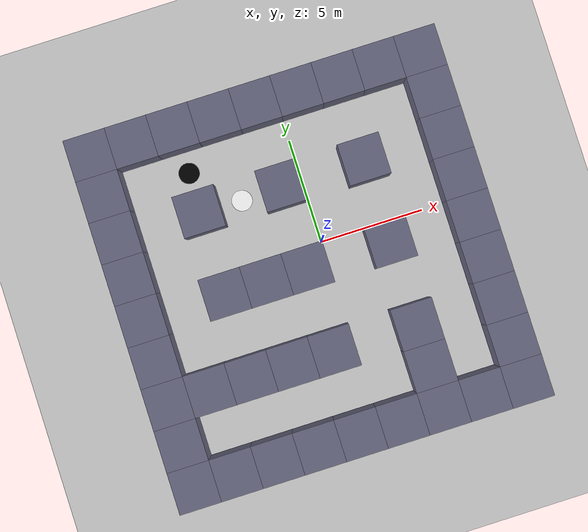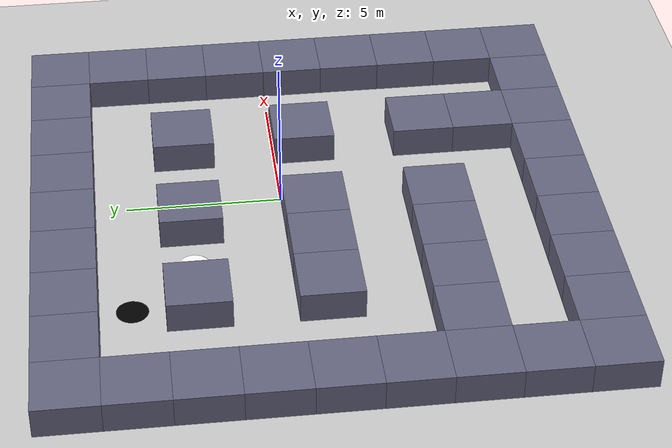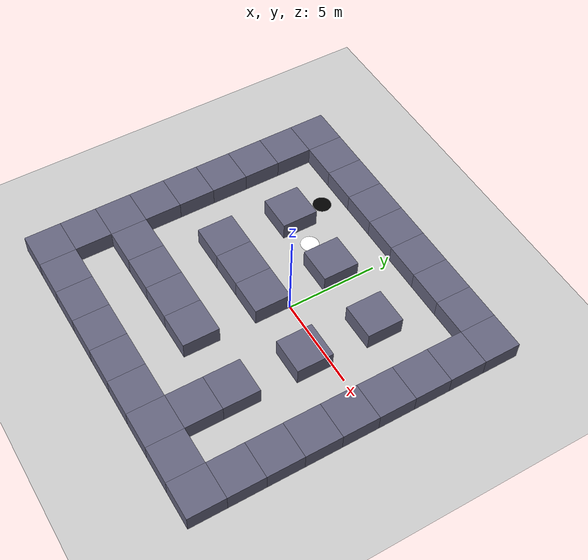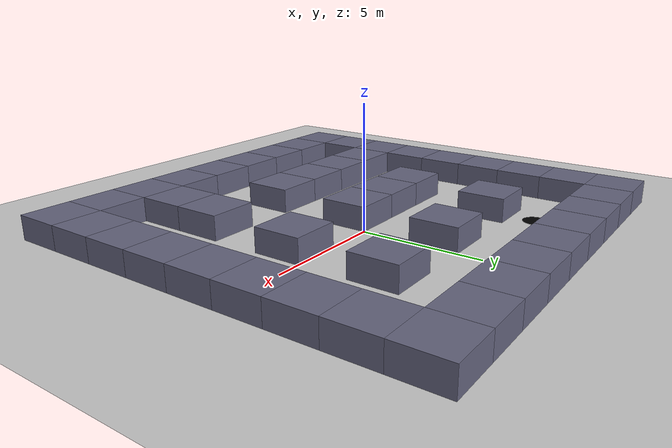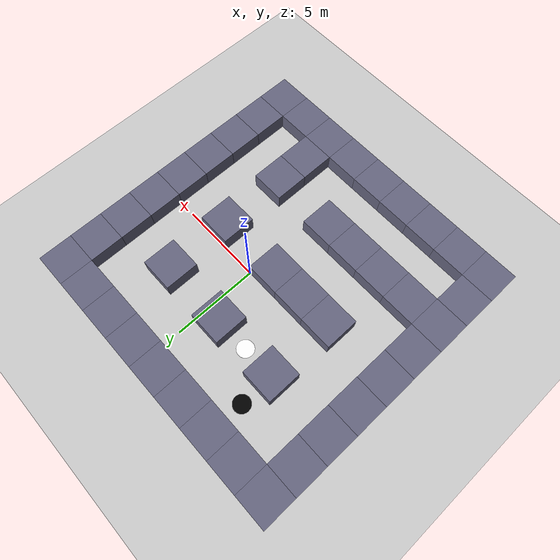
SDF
<sdf version="1.8">
 <world name="maze_4.sdf">
  <physics name="1ms" type="ignored">
   <max_step_size>0.001</max_step_size>
   <real_time_factor>1.0</real_time_factor>
  </physics>
  <plugin filename="gz-sim-physics-system" name="gz::sim::systems::Physics"/>
  <plugin filename="gz-sim-user-commands-system" name="gz::sim::systems::UserCommands"/>
  <plugin filename="gz-sim-scene-broadcaster-system" name="gz::sim::systems::SceneBroadcaster"/>
  <plugin filename="gz-sim-sensors-system" name="gz::sim::systems::Sensors">
   <render_engine>ogre2</render_engine>
  </plugin>
  <plugin filename="gz-sim-imu-system" name="gz::sim::systems::Imu"/>
  <light type="directional" name="sun">
   <pose>0 0 10 0 0 0</pose>
   <diffuse>0.8 0.8 0.8 1</diffuse>
   <specular>0.2 0.2 0.2 1</specular>
   <attenuation>
    <range>1000</range>
    <constant>0.9</constant>
    <linear>0.01</linear>
    <quadratic>0.001</quadratic>
   </attenuation>
   <direction>-0.5 0.1 -0.9</direction>
  </light>
  <model name="ground_plane">
   <static>true</static>
   <link name="link">
    <collision name="collision">
     <geometry><plane><normal>0 0 1</normal><size>200 200</size></plane></geometry>
    </collision>
    <visual name="visual">
     <geometry><plane><normal>0 0 1</normal><size>200 200</size></plane></geometry>
     <material><ambient>0.8 0.8 0.8 1</ambient><diffuse>0.8 0.8 0.8 1</diffuse></material>
    </visual>
   </link>
  </model>
  <model name="wall_0">
   <static>true</static>
   <pose>-9.0 -9.0 0.5 0 0 0</pose>
   <link name="link">
    <collision name="collision"><geometry><box><size>2.0 2.0 1.0</size></box></geometry></collision>
    <visual name="visual">
     <geometry><box><size>2.0 2.0 1.0</size></box></geometry>
     <material><ambient>0.3 0.3 0.4 1</ambient><diffuse>0.4 0.4 0.5 1</diffuse></material>
    </visual>
   </link>
  </model>
  <model name="wall_1">
   <static>true</static>
   <pose>-9.0 -7.0 0.5 0 0 0</pose>
   <link name="link">
    <collision name="collision"><geometry><box><size>2.0 2.0 1.0</size></box></geometry></collision>
    <visual name="visual">
     <geometry><box><size>2.0 2.0 1.0</size></box></geometry>
     <material><ambient>0.3 0.3 0.4 1</ambient><diffuse>0.4 0.4 0.5 1</diffuse></material>
    </visual>
   </link>
  </model>
  <model name="wall_2">
   <static>true</static>
   <pose>-9.0 -5.0 0.5 0 0 0</pose>
   <link name="link">
    <collision name="collision"><geometry><box><size>2.0 2.0 1.0</size></box></geometry></collision>
    <visual name="visual">
     <geometry><box><size>2.0 2.0 1.0</size></box></geometry>
     <material><ambient>0.3 0.3 0.4 1</ambient><diffuse>0.4 0.4 0.5 1</diffuse></material>
    </visual>
   </link>
  </model>
  <model name="wall_3">
   <static>true</static>
   <pose>-9.0 -3.0 0.5 0 0 0</pose>
   <link name="link">
    <collision name="collision"><geometry><box><size>2.0 2.0 1.0</size></box></geometry></collision>
    <visual name="visual">
     <geometry><box><size>2.0 2.0 1.0</size></box></geometry>
     <material><ambient>0.3 0.3 0.4 1</ambient><diffuse>0.4 0.4 0.5 1</diffuse></material>
    </visual>
   </link>
  </model>
  <model name="wall_4">
   <static>true</static>
   <pose>-9.0 -1.0 0.5 0 0 0</pose>
   <link name="link">
    <collision name="collision"><geometry><box><size>2.0 2.0 1.0</size></box></geometry></collision>
    <visual name="visual">
     <geometry><box><size>2.0 2.0 1.0</size></box></geometry>
     <material><ambient>0.3 0.3 0.4 1</ambient><diffuse>0.4 0.4 0.5 1</diffuse></material>
    </visual>
   </link>
  </model>
  <model name="wall_5">
   <static>true</static>
   <pose>-9.0 1.0 0.5 0 0 0</pose>
   <link name="link">
    <collision name="collision"><geometry><box><size>2.0 2.0 1.0</size></box></geometry></collision>
    <visual name="visual">
     <geometry><box><size>2.0 2.0 1.0</size></box></geometry>
     <material><ambient>0.3 0.3 0.4 1</ambient><diffuse>0.4 0.4 0.5 1</diffuse></material>
    </visual>
   </link>
  </model>
  <model name="wall_6">
   <static>true</static>
   <pose>-9.0 3.0 0.5 0 0 0</pose>
   <link name="link">
    <collision name="collision"><geometry><box><size>2.0 2.0 1.0</size></box></geometry></collision>
    <visual name="visual">
     <geometry><box><size>2.0 2.0 1.0</size></box></geometry>
     <material><ambient>0.3 0.3 0.4 1</ambient><diffuse>0.4 0.4 0.5 1</diffuse></material>
    </visual>
   </link>
  </model>
  <model name="wall_7">
   <static>true</static>
   <pose>-9.0 5.0 0.5 0 0 0</pose>
   <link name="link">
    <collision name="collision"><geometry><box><size>2.0 2.0 1.0</size></box></geometry></collision>
    <visual name="visual">
     <geometry><box><size>2.0 2.0 1.0</size></box></geometry>
     <material><ambient>0.3 0.3 0.4 1</ambient><diffuse>0.4 0.4 0.5 1</diffuse></material>
    </visual>
   </link>
  </model>
  <model name="wall_8">
   <static>true</static>
   <pose>-9.0 7.0 0.5 0 0 0</pose>
   <link name="link">
    <collision name="collision"><geometry><box><size>2.0 2.0 1.0</size></box></geometry></collision>
    <visual name="visual">
     <geometry><box><size>2.0 2.0 1.0</size></box></geometry>
     <material><ambient>0.3 0.3 0.4 1</ambient><diffuse>0.4 0.4 0.5 1</diffuse></material>
    </visual>
   </link>
  </model>
  <model name="wall_9">
   <static>true</static>
   <pose>-7.0 -9.0 0.5 0 0 0</pose>
   <link name="link">
    <collision name="collision"><geometry><box><size>2.0 2.0 1.0</size></box></geometry></collision>
    <visual name="visual">
     <geometry><box><size>2.0 2.0 1.0</size></box></geometry>
     <material><ambient>0.3 0.3 0.4 1</ambient><diffuse>0.4 0.4 0.5 1</diffuse></material>
    </visual>
   </link>
  </model>
  <model name="wall_10">
   <static>true</static>
   <pose>-7.0 -5.0 0.5 0 0 0</pose>
   <link name="link">
    <collision name="collision"><geometry><box><size>2.0 2.0 1.0</size></box></geometry></collision>
    <visual name="visual">
     <geometry><box><size>2.0 2.0 1.0</size></box></geometry>
     <material><ambient>0.3 0.3 0.4 1</ambient><diffuse>0.4 0.4 0.5 1</diffuse></material>
    </visual>
   </link>
  </model>
  <model name="wall_11">
   <static>true</static>
   <pose>-7.0 7.0 0.5 0 0 0</pose>
   <link name="link">
    <collision name="collision"><geometry><box><size>2.0 2.0 1.0</size></box></geometry></collision>
    <visual name="visual">
     <geometry><box><size>2.0 2.0 1.0</size></box></geometry>
     <material><ambient>0.3 0.3 0.4 1</ambient><diffuse>0.4 0.4 0.5 1</diffuse></material>
    </visual>
   </link>
  </model>
  <model name="wall_12">
   <static>true</static>
   <pose>-5.0 -9.0 0.5 0 0 0</pose>
   <link name="link">
    <collision name="collision"><geometry><box><size>2.0 2.0 1.0</size></box></geometry></collision>
    <visual name="visual">
     <geometry><box><size>2.0 2.0 1.0</size></box></geometry>
     <material><ambient>0.3 0.3 0.4 1</ambient><diffuse>0.4 0.4 0.5 1</diffuse></material>
    </visual>
   </link>
  </model>
  <model name="wall_13">
   <static>true</static>
   <pose>-5.0 -5.0 0.5 0 0 0</pose>
   <link name="link">
    <collision name="collision"><geometry><box><size>2.0 2.0 1.0</size></box></geometry></collision>
    <visual name="visual">
     <geometry><box><size>2.0 2.0 1.0</size></box></geometry>
     <material><ambient>0.3 0.3 0.4 1</ambient><diffuse>0.4 0.4 0.5 1</diffuse></material>
    </visual>
   </link>
  </model>
  <model name="wall_14">
   <static>true</static>
   <pose>-5.0 -1.0 0.5 0 0 0</pose>
   <link name="link">
    <collision name="collision"><geometry><box><size>2.0 2.0 1.0</size></box></geometry></collision>
    <visual name="visual">
     <geometry><box><size>2.0 2.0 1.0</size></box></geometry>
     <material><ambient>0.3 0.3 0.4 1</ambient><diffuse>0.4 0.4 0.5 1</diffuse></material>
    </visual>
   </link>
  </model>
  <model name="wall_15">
   <static>true</static>
   <pose>-5.0 3.0 0.5 0 0 0</pose>
   <link name="link">
    <collision name="collision"><geometry><box><size>2.0 2.0 1.0</size></box></geometry></collision>
    <visual name="visual">
     <geometry><box><size>2.0 2.0 1.0</size></box></geometry>
     <material><ambient>0.3 0.3 0.4 1</ambient><diffuse>0.4 0.4 0.5 1</diffuse></material>
    </visual>
   </link>
  </model>
  <model name="wall_16">
   <static>true</static>
   <pose>-5.0 7.0 0.5 0 0 0</pose>
   <link name="link">
    <collision name="collision"><geometry><box><size>2.0 2.0 1.0</size></box></geometry></collision>
    <visual name="visual">
     <geometry><box><size>2.0 2.0 1.0</size></box></geometry>
     <material><ambient>0.3 0.3 0.4 1</ambient><diffuse>0.4 0.4 0.5 1</diffuse></material>
    </visual>
   </link>
  </model>
  <model name="wall_17">
   <static>true</static>
   <pose>-3.0 -9.0 0.5 0 0 0</pose>
   <link name="link">
    <collision name="collision"><geometry><box><size>2.0 2.0 1.0</size></box></geometry></collision>
    <visual name="visual">
     <geometry><box><size>2.0 2.0 1.0</size></box></geometry>
     <material><ambient>0.3 0.3 0.4 1</ambient><diffuse>0.4 0.4 0.5 1</diffuse></material>
    </visual>
   </link>
  </model>
  <model name="wall_18">
   <static>true</static>
   <pose>-3.0 -5.0 0.5 0 0 0</pose>
   <link name="link">
    <collision name="collision"><geometry><box><size>2.0 2.0 1.0</size></box></geometry></collision>
    <visual name="visual">
     <geometry><box><size>2.0 2.0 1.0</size></box></geometry>
     <material><ambient>0.3 0.3 0.4 1</ambient><diffuse>0.4 0.4 0.5 1</diffuse></material>
    </visual>
   </link>
  </model>
  <model name="wall_19">
   <static>true</static>
   <pose>-3.0 -1.0 0.5 0 0 0</pose>
   <link name="link">
    <collision name="collision"><geometry><box><size>2.0 2.0 1.0</size></box></geometry></collision>
    <visual name="visual">
     <geometry><box><size>2.0 2.0 1.0</size></box></geometry>
     <material><ambient>0.3 0.3 0.4 1</ambient><diffuse>0.4 0.4 0.5 1</diffuse></material>
    </visual>
   </link>
  </model>
  <model name="wall_20">
   <static>true</static>
   <pose>-3.0 7.0 0.5 0 0 0</pose>
   <link name="link">
    <collision name="collision"><geometry><box><size>2.0 2.0 1.0</size></box></geometry></collision>
    <visual name="visual">
     <geometry><box><size>2.0 2.0 1.0</size></box></geometry>
     <material><ambient>0.3 0.3 0.4 1</ambient><diffuse>0.4 0.4 0.5 1</diffuse></material>
    </visual>
   </link>
  </model>
  <model name="wall_21">
   <static>true</static>
   <pose>-1.0 -9.0 0.5 0 0 0</pose>
   <link name="link">
    <collision name="collision"><geometry><box><size>2.0 2.0 1.0</size></box></geometry></collision>
    <visual name="visual">
     <geometry><box><size>2.0 2.0 1.0</size></box></geometry>
     <material><ambient>0.3 0.3 0.4 1</ambient><diffuse>0.4 0.4 0.5 1</diffuse></material>
    </visual>
   </link>
  </model>
  <model name="wall_22">
   <static>true</static>
   <pose>-1.0 -5.0 0.5 0 0 0</pose>
   <link name="link">
    <collision name="collision"><geometry><box><size>2.0 2.0 1.0</size></box></geometry></collision>
    <visual name="visual">
     <geometry><box><size>2.0 2.0 1.0</size></box></geometry>
     <material><ambient>0.3 0.3 0.4 1</ambient><diffuse>0.4 0.4 0.5 1</diffuse></material>
    </visual>
   </link>
  </model>
  <model name="wall_23">
   <static>true</static>
   <pose>-1.0 -1.0 0.5 0 0 0</pose>
   <link name="link">
    <collision name="collision"><geometry><box><size>2.0 2.0 1.0</size></box></geometry></collision>
    <visual name="visual">
     <geometry><box><size>2.0 2.0 1.0</size></box></geometry>
     <material><ambient>0.3 0.3 0.4 1</ambient><diffuse>0.4 0.4 0.5 1</diffuse></material>
    </visual>
   </link>
  </model>
  <model name="wall_24">
   <static>true</static>
   <pose>-1.0 3.0 0.5 0 0 0</pose>
   <link name="link">
    <collision name="collision"><geometry><box><size>2.0 2.0 1.0</size></box></geometry></collision>
    <visual name="visual">
     <geometry><box><size>2.0 2.0 1.0</size></box></geometry>
     <material><ambient>0.3 0.3 0.4 1</ambient><diffuse>0.4 0.4 0.5 1</diffuse></material>
    </visual>
   </link>
  </model>
  <model name="wall_25">
   <static>true</static>
   <pose>-1.0 7.0 0.5 0 0 0</pose>
   <link name="link">
    <collision name="collision"><geometry><box><size>2.0 2.0 1.0</size></box></geometry></collision>
    <visual name="visual">
     <geometry><box><size>2.0 2.0 1.0</size></box></geometry>
     <material><ambient>0.3 0.3 0.4 1</ambient><diffuse>0.4 0.4 0.5 1</diffuse></material>
    </visual>
   </link>
  </model>
  <model name="wall_26">
   <static>true</static>
   <pose>1.0 -9.0 0.5 0 0 0</pose>
   <link name="link">
    <collision name="collision"><geometry><box><size>2.0 2.0 1.0</size></box></geometry></collision>
    <visual name="visual">
     <geometry><box><size>2.0 2.0 1.0</size></box></geometry>
     <material><ambient>0.3 0.3 0.4 1</ambient><diffuse>0.4 0.4 0.5 1</diffuse></material>
    </visual>
   </link>
  </model>
  <model name="wall_27">
   <static>true</static>
   <pose>1.0 7.0 0.5 0 0 0</pose>
   <link name="link">
    <collision name="collision"><geometry><box><size>2.0 2.0 1.0</size></box></geometry></collision>
    <visual name="visual">
     <geometry><box><size>2.0 2.0 1.0</size></box></geometry>
     <material><ambient>0.3 0.3 0.4 1</ambient><diffuse>0.4 0.4 0.5 1</diffuse></material>
    </visual>
   </link>
  </model>
  <model name="wall_28">
   <static>true</static>
   <pose>3.0 -9.0 0.5 0 0 0</pose>
   <link name="link">
    <collision name="collision"><geometry><box><size>2.0 2.0 1.0</size></box></geometry></collision>
    <visual name="visual">
     <geometry><box><size>2.0 2.0 1.0</size></box></geometry>
     <material><ambient>0.3 0.3 0.4 1</ambient><diffuse>0.4 0.4 0.5 1</diffuse></material>
    </visual>
   </link>
  </model>
  <model name="wall_29">
   <static>true</static>
   <pose>3.0 -7.0 0.5 0 0 0</pose>
   <link name="link">
    <collision name="collision"><geometry><box><size>2.0 2.0 1.0</size></box></geometry></collision>
    <visual name="visual">
     <geometry><box><size>2.0 2.0 1.0</size></box></geometry>
     <material><ambient>0.3 0.3 0.4 1</ambient><diffuse>0.4 0.4 0.5 1</diffuse></material>
    </visual>
   </link>
  </model>
  <model name="wall_30">
   <static>true</static>
   <pose>3.0 -5.0 0.5 0 0 0</pose>
   <link name="link">
    <collision name="collision"><geometry><box><size>2.0 2.0 1.0</size></box></geometry></collision>
    <visual name="visual">
     <geometry><box><size>2.0 2.0 1.0</size></box></geometry>
     <material><ambient>0.3 0.3 0.4 1</ambient><diffuse>0.4 0.4 0.5 1</diffuse></material>
    </visual>
   </link>
  </model>
  <model name="wall_31">
   <static>true</static>
   <pose>3.0 -1.0 0.5 0 0 0</pose>
   <link name="link">
    <collision name="collision"><geometry><box><size>2.0 2.0 1.0</size></box></geometry></collision>
    <visual name="visual">
     <geometry><box><size>2.0 2.0 1.0</size></box></geometry>
     <material><ambient>0.3 0.3 0.4 1</ambient><diffuse>0.4 0.4 0.5 1</diffuse></material>
    </visual>
   </link>
  </model>
  <model name="wall_32">
   <static>true</static>
   <pose>3.0 3.0 0.5 0 0 0</pose>
   <link name="link">
    <collision name="collision"><geometry><box><size>2.0 2.0 1.0</size></box></geometry></collision>
    <visual name="visual">
     <geometry><box><size>2.0 2.0 1.0</size></box></geometry>
     <material><ambient>0.3 0.3 0.4 1</ambient><diffuse>0.4 0.4 0.5 1</diffuse></material>
    </visual>
   </link>
  </model>
  <model name="wall_33">
   <static>true</static>
   <pose>3.0 7.0 0.5 0 0 0</pose>
   <link name="link">
    <collision name="collision"><geometry><box><size>2.0 2.0 1.0</size></box></geometry></collision>
    <visual name="visual">
     <geometry><box><size>2.0 2.0 1.0</size></box></geometry>
     <material><ambient>0.3 0.3 0.4 1</ambient><diffuse>0.4 0.4 0.5 1</diffuse></material>
    </visual>
   </link>
  </model>
  <model name="wall_34">
   <static>true</static>
   <pose>5.0 -9.0 0.5 0 0 0</pose>
   <link name="link">
    <collision name="collision"><geometry><box><size>2.0 2.0 1.0</size></box></geometry></collision>
    <visual name="visual">
     <geometry><box><size>2.0 2.0 1.0</size></box></geometry>
     <material><ambient>0.3 0.3 0.4 1</ambient><diffuse>0.4 0.4 0.5 1</diffuse></material>
    </visual>
   </link>
  </model>
  <model name="wall_35">
   <static>true</static>
   <pose>5.0 7.0 0.5 0 0 0</pose>
   <link name="link">
    <collision name="collision"><geometry><box><size>2.0 2.0 1.0</size></box></geometry></collision>
    <visual name="visual">
     <geometry><box><size>2.0 2.0 1.0</size></box></geometry>
     <material><ambient>0.3 0.3 0.4 1</ambient><diffuse>0.4 0.4 0.5 1</diffuse></material>
    </visual>
   </link>
  </model>
  <model name="wall_36">
   <static>true</static>
   <pose>7.0 -9.0 0.5 0 0 0</pose>
   <link name="link">
    <collision name="collision"><geometry><box><size>2.0 2.0 1.0</size></box></geometry></collision>
    <visual name="visual">
     <geometry><box><size>2.0 2.0 1.0</size></box></geometry>
     <material><ambient>0.3 0.3 0.4 1</ambient><diffuse>0.4 0.4 0.5 1</diffuse></material>
    </visual>
   </link>
  </model>
  <model name="wall_37">
   <static>true</static>
   <pose>7.0 -7.0 0.5 0 0 0</pose>
   <link name="link">
    <collision name="collision"><geometry><box><size>2.0 2.0 1.0</size></box></geometry></collision>
    <visual name="visual">
     <geometry><box><size>2.0 2.0 1.0</size></box></geometry>
     <material><ambient>0.3 0.3 0.4 1</ambient><diffuse>0.4 0.4 0.5 1</diffuse></material>
    </visual>
   </link>
  </model>
  <model name="wall_38">
   <static>true</static>
   <pose>7.0 -5.0 0.5 0 0 0</pose>
   <link name="link">
    <collision name="collision"><geometry><box><size>2.0 2.0 1.0</size></box></geometry></collision>
    <visual name="visual">
     <geometry><box><size>2.0 2.0 1.0</size></box></geometry>
     <material><ambient>0.3 0.3 0.4 1</ambient><diffuse>0.4 0.4 0.5 1</diffuse></material>
    </visual>
   </link>
  </model>
  <model name="wall_39">
   <static>true</static>
   <pose>7.0 -3.0 0.5 0 0 0</pose>
   <link name="link">
    <collision name="collision"><geometry><box><size>2.0 2.0 1.0</size></box></geometry></collision>
    <visual name="visual">
     <geometry><box><size>2.0 2.0 1.0</size></box></geometry>
     <material><ambient>0.3 0.3 0.4 1</ambient><diffuse>0.4 0.4 0.5 1</diffuse></material>
    </visual>
   </link>
  </model>
  <model name="wall_40">
   <static>true</static>
   <pose>7.0 -1.0 0.5 0 0 0</pose>
   <link name="link">
    <collision name="collision"><geometry><box><size>2.0 2.0 1.0</size></box></geometry></collision>
    <visual name="visual">
     <geometry><box><size>2.0 2.0 1.0</size></box></geometry>
     <material><ambient>0.3 0.3 0.4 1</ambient><diffuse>0.4 0.4 0.5 1</diffuse></material>
    </visual>
   </link>
  </model>
  <model name="wall_41">
   <static>true</static>
   <pose>7.0 1.0 0.5 0 0 0</pose>
   <link name="link">
    <collision name="collision"><geometry><box><size>2.0 2.0 1.0</size></box></geometry></collision>
    <visual name="visual">
     <geometry><box><size>2.0 2.0 1.0</size></box></geometry>
     <material><ambient>0.3 0.3 0.4 1</ambient><diffuse>0.4 0.4 0.5 1</diffuse></material>
    </visual>
   </link>
  </model>
  <model name="wall_42">
   <static>true</static>
   <pose>7.0 3.0 0.5 0 0 0</pose>
   <link name="link">
    <collision name="collision"><geometry><box><size>2.0 2.0 1.0</size></box></geometry></collision>
    <visual name="visual">
     <geometry><box><size>2.0 2.0 1.0</size></box></geometry>
     <material><ambient>0.3 0.3 0.4 1</ambient><diffuse>0.4 0.4 0.5 1</diffuse></material>
    </visual>
   </link>
  </model>
  <model name="wall_43">
   <static>true</static>
   <pose>7.0 5.0 0.5 0 0 0</pose>
   <link name="link">
    <collision name="collision"><geometry><box><size>2.0 2.0 1.0</size></box></geometry></collision>
    <visual name="visual">
     <geometry><box><size>2.0 2.0 1.0</size></box></geometry>
     <material><ambient>0.3 0.3 0.4 1</ambient><diffuse>0.4 0.4 0.5 1</diffuse></material>
    </visual>
   </link>
  </model>
  <model name="wall_44">
   <static>true</static>
   <pose>7.0 7.0 0.5 0 0 0</pose>
   <link name="link">
    <collision name="collision"><geometry><box><size>2.0 2.0 1.0</size></box></geometry></collision>
    <visual name="visual">
     <geometry><box><size>2.0 2.0 1.0</size></box></geometry>
     <material><ambient>0.3 0.3 0.4 1</ambient><diffuse>0.4 0.4 0.5 1</diffuse></material>
    </visual>
   </link>
  </model>
  <model name="start_marker">
   <static>true</static>
   <pose>-3.0 3.0 0.001 0 0 0</pose>
   <link name="link">
    <visual name="visual">
     <geometry><cylinder><radius>0.5</radius><length>0.002</length></cylinder></geometry>
     <material><ambient>1 1 1 1</ambient><diffuse>1 1 1 1</diffuse><emissive>0 0 0 1</emissive></material>
    </visual>
   </link>
  </model>
  <model name="end_marker">
   <static>true</static>
   <pose>-5.0 5.0 0.001 0 0 0</pose>
   <link name="link">
    <visual name="visual">
     <geometry><cylinder><radius>0.5</radius><length>0.002</length></cylinder></geometry>
     <material><ambient>0 0 0 1</ambient><diffuse>0 0 0 1</diffuse><emissive>0 0 0 1</emissive></material>
    </visual>
   </link>
  </model>
 </world>
</sdf>
